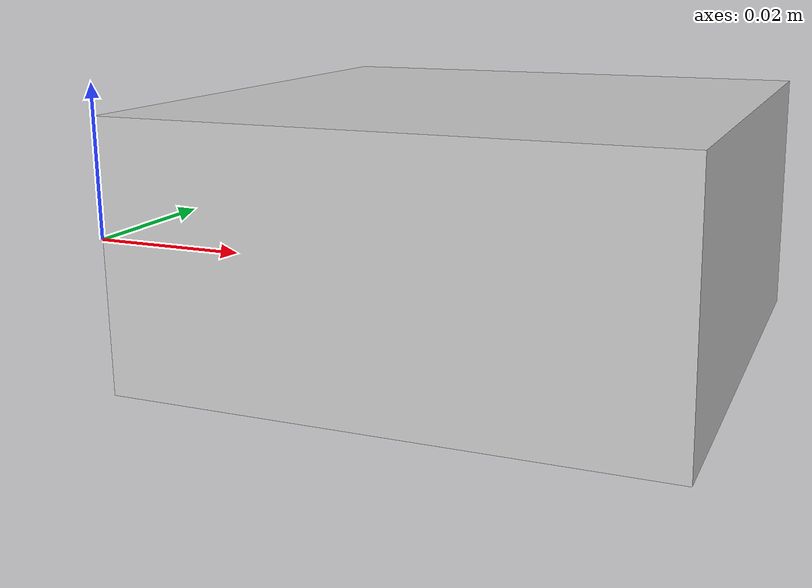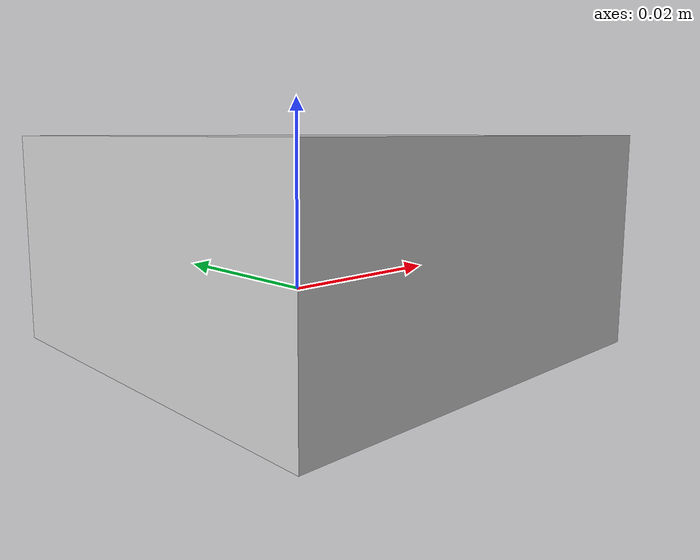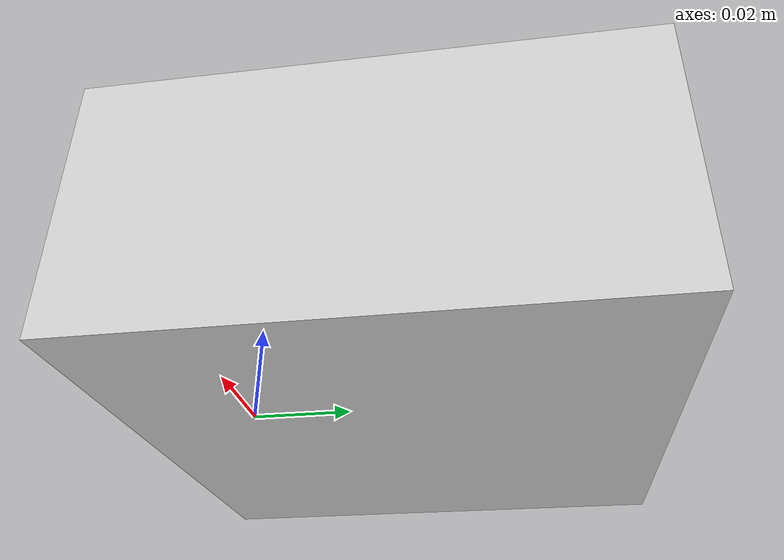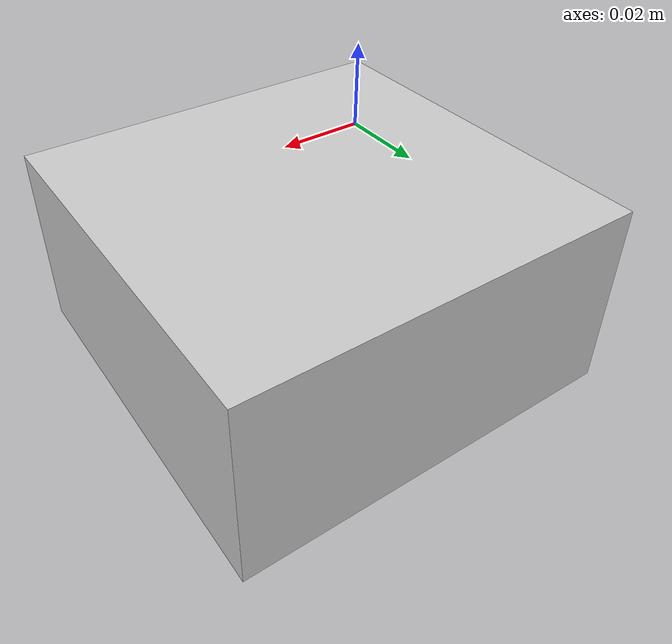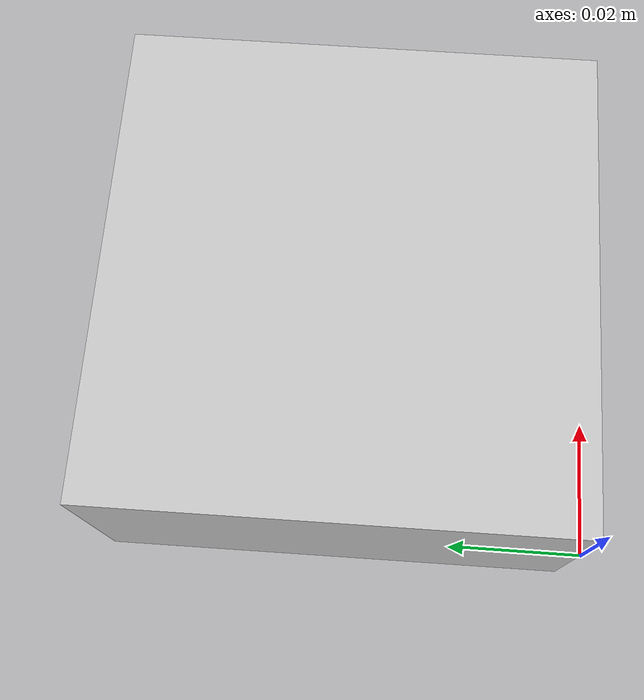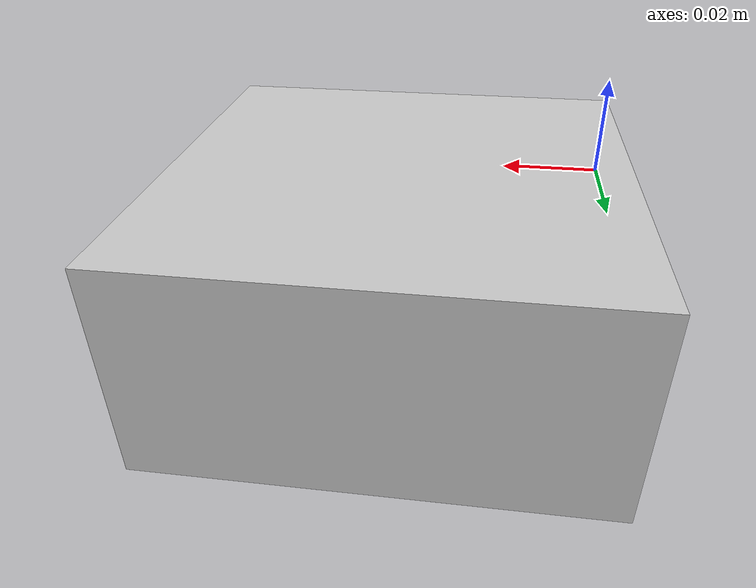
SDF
<?xml version="1.0" ?>
<sdf version="1.4">
  <model name="z_lego">
    <link name="z_lego_link">
      <inertial>
        <pose>-0.00 0.0 -0.005 0 0 0</pose>
        <mass>0.8</mass>
        <inertia>
          <ixx>0.001667</ixx>
	  <ixy>0.0</ixy>
	  <ixz>0.0</ixz>
	  <iyy>0.001667</iyy>
	  <iyz>0.0</iyz>
	  <izz>0.001667</izz>
	</inertia>
      </inertial>

      <visual name="z_lego_visual">
        <pose>0 0 0 0 1.57 0 </pose>
        <material>
	  <lighting>1</lighting>
	  <ambient>0.2 0.2 0.2 1</ambient>
	  <diffuse>0.8 0.8 0.8 1</diffuse>
	  <specular>0.2 0.2 0.2 1</specular>
	  <emissive>0.85 0.85 0.85 1</emissive>
          <script>
            <uri>model://z_lego/materials/scripts</uri>
            <uri>model://z_lego/materials/textures</uri>
            <name>Z_lego/Image</name>
          </script>
        </material>
        <geometry>
          <mesh>
            <uri>model://z_lego/meshes/z_lego.dae</uri>
	    <scale>0.4 0.25 0.25</scale>
          </mesh>
        </geometry>
      </visual>

      <collision name="z_lego_collision">
        <pose>-0.0 0.0 -0.00 0.0 0.0 0.0</pose>
        <geometry>
	  <cylinder>
	    <radius>0.042</radius>
	    <length>0.04</length>
	  </cylinder>
        </geometry>
        <max_contacts>10</max_contacts>
        <surface>
          <contact>
	    <ode>
	      <max_vel>0.000</max_vel>
            </ode>
          </contact>
          <bounce/>
          <friction>
            <torsional>
              <ode/>
            </torsional>
            <ode>
              <mu>1</mu>
              <mu2>1</mu2>
            </ode>
          </friction>
        </surface>
      </collision>
      <self_collide>0</self_collide>
      <kinematic>0</kinematic>
    </link>
  </model>
</sdf>
